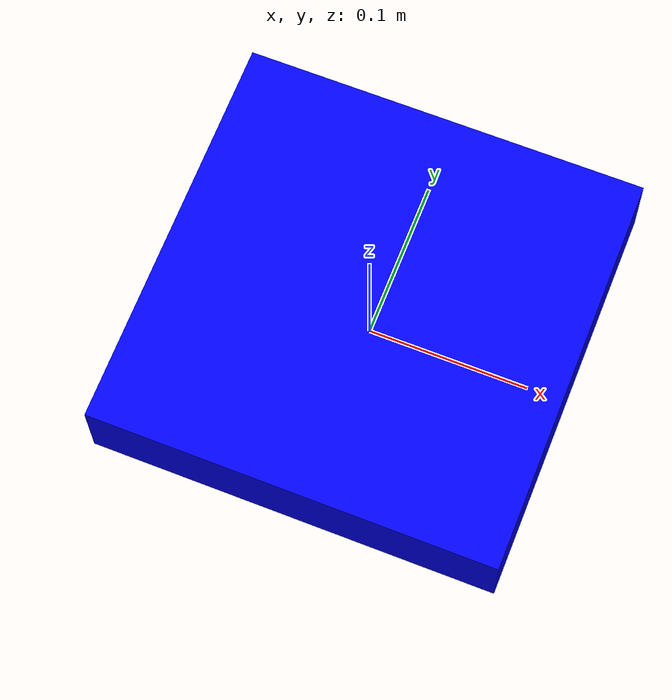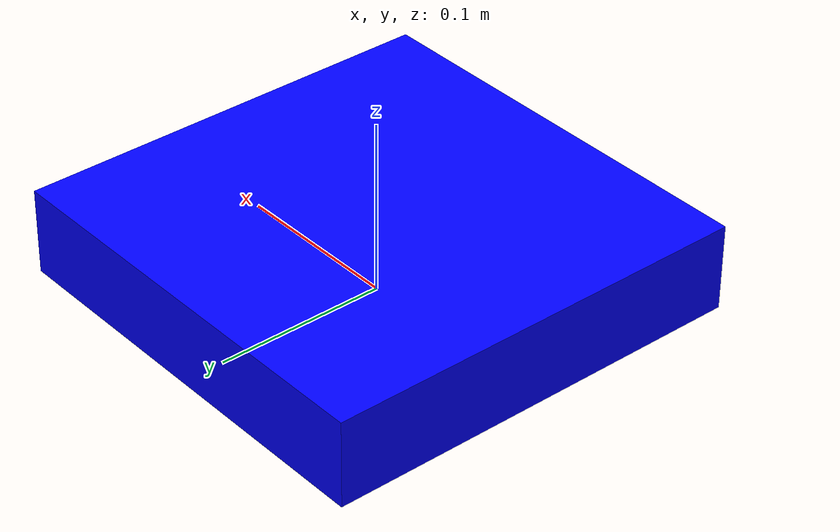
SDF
<?xml version="1.0"?>
<sdf version='1.6'>
<model name="sink">
  <link name="base_link">
    <visual name='sink_visual'>
      <pose frame=''>0 0 0.025 0 0 0</pose>
      <geometry>
        <box>
          <size>0.25 0.25 0.05</size>
        </box>
      </geometry>
      <material>
        <diffuse>0 0 1 1</diffuse>
      </material>
    </visual>

    <!-- TODO: meshcat draws collision geometries -->
    <collision name='sink_collision'>
      <pose frame=''>0 0 0.025 0 0 0</pose>
      <geometry>
        <box>
          <size>0.249 0.249 0.049</size>
        </box>
      </geometry>
    </collision>

   </link>
</model>
</sdf>
